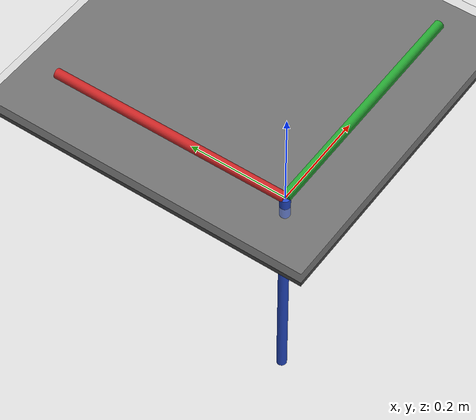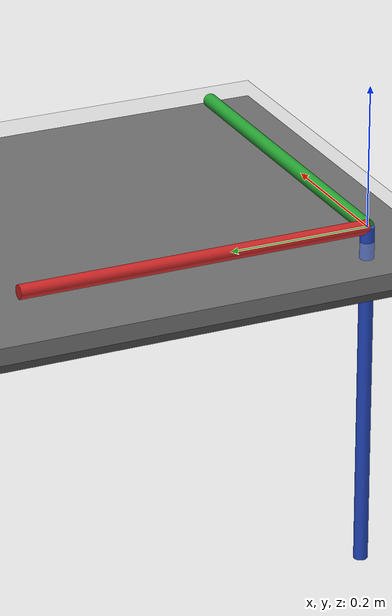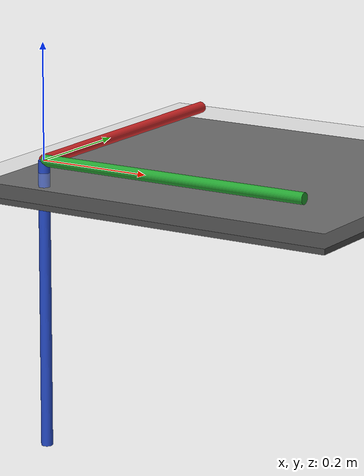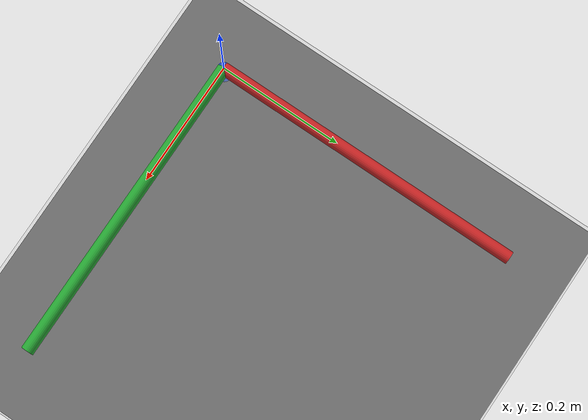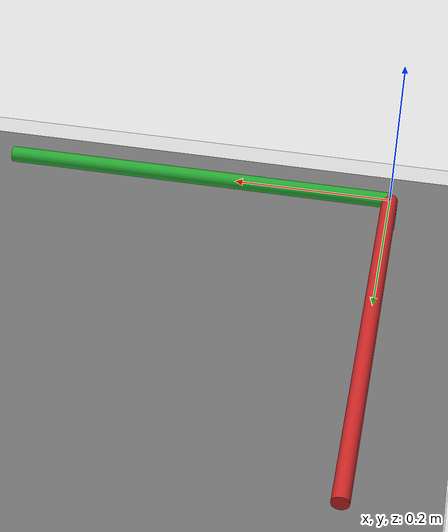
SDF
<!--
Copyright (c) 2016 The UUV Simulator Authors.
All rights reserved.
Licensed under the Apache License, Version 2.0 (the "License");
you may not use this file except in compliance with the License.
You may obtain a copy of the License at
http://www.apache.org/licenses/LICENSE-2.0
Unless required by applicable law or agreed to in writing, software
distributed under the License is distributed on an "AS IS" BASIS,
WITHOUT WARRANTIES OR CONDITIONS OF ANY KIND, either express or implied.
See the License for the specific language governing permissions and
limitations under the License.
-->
<sdf version="1.4">
 <world name="oceans_waves">
  <physics name="default_physics" default="true" type="ode">
   <ode>
    <solver>
     <type>quick</type>
     <iters>10</iters>
     <sor>1.3</sor>
     <use_dynamic_moi_rescaling>0</use_dynamic_moi_rescaling>
    </solver>
    <constraints>
     <cfm>0</cfm>
     <erp>0.2</erp>
     <contact_max_correcting_vel>100</contact_max_correcting_vel>
     <contact_surface_layer>0.001</contact_surface_layer>
    </constraints>
   </ode>
   <max_step_size>0.002</max_step_size>
   <real_time_factor>1</real_time_factor>
   <real_time_update_rate>500</real_time_update_rate>
  </physics>
  <scene>
   <ambient>0.01 0.01 0.01 1.0</ambient>
   <sky><clouds><speed>12</speed></clouds></sky>
   <shadows>1</shadows>
  </scene>
  <spherical_coordinates>
   <latitude_deg>56.71897669633431</latitude_deg>
   <longitude_deg>3.515625</longitude_deg>
  </spherical_coordinates>
  <light type="directional" name="sun1">
   <pose>50 0 150 0 0 0</pose>
   <diffuse>1 1 1 1</diffuse>
   <specular>.1 .1 .1 1</specular>
   <direction>0.3 0.3 -1</direction>
   <cast_shadows>false</cast_shadows>
  </light>
  <light type="directional" name="sun_diffuse">
   <pose>-50 0 -150 0 0 0</pose>
   <diffuse>0.6 0.6 0.6 1</diffuse>
   <specular>0 0 0 1</specular>
   <direction>-0.3 -0.3 -1</direction>
   <cast_shadows>false</cast_shadows>
  </light>
  <include><uri>model://ned_frame</uri></include>
  <include><uri>model://asphalt_plane</uri><pose>0 0 -0.02 0 0 0</pose></include>
  <include><uri>model://asphalt_plane2</uri><pose>0 0 -0.05 0 0 0</pose></include>
  <plugin name="underwater_current_plugin" filename="libuuv_underwater_current_ros_plugin.so">
   <namespace>hydrodynamics</namespace>
   <constant_current>
    <topic>current_velocity</topic>
    <velocity><mean>0</mean><min>0</min><max>5</max><mu>0.0</mu><noiseAmp>0.0</noiseAmp></velocity>
    <horizontal_angle>
     <mean>0</mean>
     <min>-3.141592653589793238</min>
     <max>3.141592653589793238</max>
     <mu>0.0</mu>
     <noiseAmp>0.0</noiseAmp>
    </horizontal_angle>
    <vertical_angle>
     <mean>0</mean>
     <min>-3.141592653589793238</min>
     <max>3.141592653589793238</max>
     <mu>0.0</mu>
     <noiseAmp>0.0</noiseAmp>
    </vertical_angle>
   </constant_current>
  </plugin>
  <plugin name="sc_interface" filename="libuuv_sc_ros_interface_plugin.so"/>
 </world>
</sdf>

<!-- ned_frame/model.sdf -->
<sdf version='1.5'>
    <model name="world_ned">

      <pose>0 0 0 0 0 0</pose>
      <static>true</static>

      <link name="world_ned">
        <gravity>0</gravity>
        <pose>0 0 0 3.14159265359 0 1.5707963267948966</pose>

        <visual name="N_visual">
          <pose>0.25 0 0 1.5707963267948966 0 1.5707963267948966</pose>
          <geometry>
            <cylinder>
              <radius>0.01</radius>
              <length>0.5</length>
            </cylinder>
          </geometry>
          <material>
            <script>
              <uri>file://media/materials/scripts/gazebo.material</uri>
              <name>Gazebo/Red</name>
            </script>
          </material>
        </visual>

        <visual name="E_visual">
          <pose>0 0.25 0 1.5707963267948966 0 0</pose>
          <geometry>
            <cylinder>
              <radius>0.01</radius>
              <length>0.5</length>
            </cylinder>
          </geometry>
          <material>
            <script>
              <uri>file://media/materials/scripts/gazebo.material</uri>
              <name>Gazebo/Green</name>
            </script>
          </material>
        </visual>

        <visual name="D_visual">
          <pose>0 0 0.25 0 0 0</pose>
          <geometry>
            <cylinder>
              <radius>0.01</radius>
              <length>0.5</length>
            </cylinder>
          </geometry>
          <material>
            <script>
              <uri>file://media/materials/scripts/gazebo.material</uri>
              <name>Gazebo/Blue</name>
            </script>
          </material>
        </visual>
      </link>
    </model>
</sdf>

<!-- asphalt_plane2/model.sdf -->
<sdf version="1.5">
  <model name="asphalt_plane2">
    <static>true</static>
    <link name="link">
      <collision name="collision">
        <geometry>
          <box>
            <size>200 200 .01</size>
          </box>
        </geometry>
      </collision>
      <visual name="visual">
        <cast_shadows>false</cast_shadows>
        <geometry>
          <box>
            <size>200 200 .01</size>
          </box>
        </geometry>
        <material>
          <script>
            <uri>model://asphalt_plane2/materials/scripts</uri>
            <uri>model://asphalt_plane2/materials/textures</uri>
            <name>vrc/asphalt2</name>
          </script>
        </material>
      </visual>
    </link>
  </model>
</sdf>
